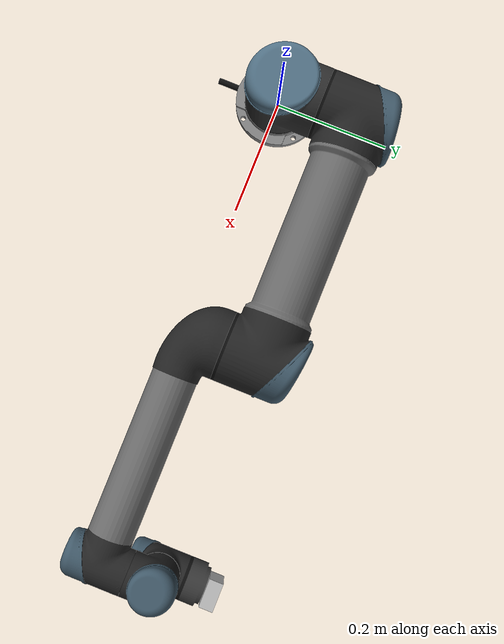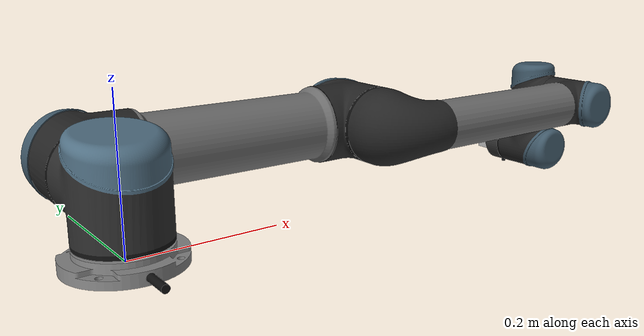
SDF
<?xml version='1.0'?>
<sdf version='1.6'>
  <model name='ur5'>
    <link name='base_link'>
      <pose frame=''>0 0 0 0 -0 0</pose>
      <inertial>
        <pose frame=''>0 0 0 0 -0 0</pose>
        <mass>4</mass>
        <inertia>
          <ixx>0.00443333</ixx>
          <ixy>0</ixy>
          <ixz>0</ixz>
          <iyy>0.00443333</iyy>
          <iyz>0</iyz>
          <izz>0.0072</izz>
        </inertia>
      </inertial>
      <self_collide>0</self_collide>
      <kinematic>0</kinematic>
      <visual name='base_link_visual'>
        <pose frame=''>0 0 0 0 -0 0</pose>
        <geometry>
          <mesh>
            <scale>1 1 1</scale>
            <uri>model://meshes/ur5/visual/base.dae</uri>
          </mesh>
        </geometry>
        <cast_shadows>1</cast_shadows>
        <transparency>0</transparency>
      </visual>
      <collision name='base_link_collision'>
        <laser_retro>0</laser_retro>
        <max_contacts>10</max_contacts>
        <pose frame=''>0 0 0 0 -0 0</pose>
        <geometry>
          <mesh>
            <uri>model://meshes/ur5/collision/base.stl</uri>
          </mesh>
        </geometry>
        <surface>
          <friction>
            <ode>
              <mu>1</mu>
              <mu2>1</mu2>
              <fdir1>0 0 0</fdir1>
              <slip1>0</slip1>
              <slip2>0</slip2>
            </ode>
            <torsional>
              <coefficient>1</coefficient>
              <patch_radius>0</patch_radius>
              <surface_radius>0</surface_radius>
              <use_patch_radius>1</use_patch_radius>
              <ode>
                <slip>0</slip>
              </ode>
            </torsional>
          </friction>
          <bounce>
            <restitution_coefficient>0</restitution_coefficient>
            <threshold>1e+06</threshold>
          </bounce>
          <contact>
            <collide_without_contact>0</collide_without_contact>
            <collide_without_contact_bitmask>1</collide_without_contact_bitmask>
            <collide_bitmask>1</collide_bitmask>
            <ode>
              <soft_cfm>0</soft_cfm>
              <soft_erp>0.2</soft_erp>
              <kp>1e+13</kp>
              <kd>1</kd>
              <max_vel>0.01</max_vel>
              <min_depth>0</min_depth>
            </ode>
            <bullet>
              <split_impulse>1</split_impulse>
              <split_impulse_penetration_threshold>-0.01</split_impulse_penetration_threshold>
              <soft_cfm>0</soft_cfm>
              <soft_erp>0.2</soft_erp>
              <kp>1e+13</kp>
              <kd>1</kd>
            </bullet>
          </contact>
        </surface>
      </collision>
    </link>
    <link name='forearm_link'>
      <pose frame=''>0.425 0.01615 0.089159 3.14159 1.57079 3.14159</pose>
      <inertial>
        <pose frame=''>0 0 0.25 0 -0 0</pose>
        <mass>2.275</mass>
        <inertia>
          <ixx>0.0494433</ixx>
          <ixy>0</ixy>
          <ixz>0</ixz>
          <iyy>0.0494433</iyy>
          <iyz>0</iyz>
          <izz>0.004095</izz>
        </inertia>
      </inertial>
      <self_collide>0</self_collide>
      <kinematic>0</kinematic>
      <visual name='forearm_link_visual'>
        <pose frame=''>0 0 0 0 -0 0</pose>
        <geometry>
          <mesh>
            <scale>1 1 1</scale>
            <uri>model://meshes/ur5/visual/forearm.dae</uri>
          </mesh>
        </geometry>
        <cast_shadows>1</cast_shadows>
        <transparency>0</transparency>
      </visual>
      <collision name='forearm_link_collision'>
        <laser_retro>0</laser_retro>
        <max_contacts>10</max_contacts>
        <pose frame=''>0 0 0 0 -0 0</pose>
        <geometry>
          <mesh>
            <uri>model://meshes/ur5/collision/forearm.stl</uri>
          </mesh>
        </geometry>
        <surface>
          <friction>
            <ode>
              <mu>1</mu>
              <mu2>1</mu2>
              <fdir1>0 0 0</fdir1>
              <slip1>0</slip1>
              <slip2>0</slip2>
            </ode>
            <torsional>
              <coefficient>1</coefficient>
              <patch_radius>0</patch_radius>
              <surface_radius>0</surface_radius>
              <use_patch_radius>1</use_patch_radius>
              <ode>
                <slip>0</slip>
              </ode>
            </torsional>
          </friction>
          <bounce>
            <restitution_coefficient>0</restitution_coefficient>
            <threshold>1e+06</threshold>
          </bounce>
          <contact>
            <collide_without_contact>0</collide_without_contact>
            <collide_without_contact_bitmask>1</collide_without_contact_bitmask>
            <collide_bitmask>1</collide_bitmask>
            <ode>
              <soft_cfm>0</soft_cfm>
              <soft_erp>0.2</soft_erp>
              <kp>1e+13</kp>
              <kd>1</kd>
              <max_vel>0.01</max_vel>
              <min_depth>0</min_depth>
            </ode>
            <bullet>
              <split_impulse>1</split_impulse>
              <split_impulse_penetration_threshold>-0.01</split_impulse_penetration_threshold>
              <soft_cfm>0</soft_cfm>
              <soft_erp>0.2</soft_erp>
              <kp>1e+13</kp>
              <kd>1</kd>
            </bullet>
          </contact>
        </surface>
      </collision>
    </link>
    <link name='shoulder_link'>
      <pose frame=''>-0 0 0.089159 0 -0 0</pose>
      <inertial>
        <pose frame=''>0 0 0 0 -0 0</pose>
        <mass>3.7</mass>
        <inertia>
          <ixx>0.0102675</ixx>
          <ixy>0</ixy>
          <ixz>0</ixz>
          <iyy>0.0102675</iyy>
          <iyz>0</iyz>
          <izz>0.00666</izz>
        </inertia>
      </inertial>
      <self_collide>0</self_collide>
      <kinematic>0</kinematic>
      <visual name='shoulder_link_visual'>
        <pose frame=''>0 0 0 0 -0 0</pose>
        <geometry>
          <mesh>
            <scale>1 1 1</scale>
            <uri>model://meshes/ur5/visual/shoulder.dae</uri>
          </mesh>
        </geometry>
        <cast_shadows>1</cast_shadows>
        <transparency>0</transparency>
      </visual>
      <collision name='shoulder_link_collision'>
        <laser_retro>0</laser_retro>
        <max_contacts>10</max_contacts>
        <pose frame=''>0 0 0 0 -0 0</pose>
        <geometry>
          <mesh>
            <uri>model://meshes/ur5/collision/shoulder.stl</uri>
          </mesh>
        </geometry>
        <surface>
          <friction>
            <ode>
              <mu>1</mu>
              <mu2>1</mu2>
              <fdir1>0 0 0</fdir1>
              <slip1>0</slip1>
              <slip2>0</slip2>
            </ode>
            <torsional>
              <coefficient>1</coefficient>
              <patch_radius>0</patch_radius>
              <surface_radius>0</surface_radius>
              <use_patch_radius>1</use_patch_radius>
              <ode>
                <slip>0</slip>
              </ode>
            </torsional>
          </friction>
          <bounce>
            <restitution_coefficient>0</restitution_coefficient>
            <threshold>1e+06</threshold>
          </bounce>
          <contact>
            <collide_without_contact>0</collide_without_contact>
            <collide_without_contact_bitmask>1</collide_without_contact_bitmask>
            <collide_bitmask>1</collide_bitmask>
            <ode>
              <soft_cfm>0</soft_cfm>
              <soft_erp>0.2</soft_erp>
              <kp>1e+13</kp>
              <kd>1</kd>
              <max_vel>0.01</max_vel>
              <min_depth>0</min_depth>
            </ode>
            <bullet>
              <split_impulse>1</split_impulse>
              <split_impulse_penetration_threshold>-0.01</split_impulse_penetration_threshold>
              <soft_cfm>0</soft_cfm>
              <soft_erp>0.2</soft_erp>
              <kp>1e+13</kp>
              <kd>1</kd>
            </bullet>
          </contact>
        </surface>
      </collision>
    </link>
    <link name='upper_arm_link'>
      <pose frame=''>-0 0.13585 0.089159 3.14159 1.57079 3.14159</pose>
      <inertial>
        <pose frame=''>0 0 0.28 0 -0 0</pose>
        <mass>8.393</mass>
        <inertia>
          <ixx>0.226891</ixx>
          <ixy>0</ixy>
          <ixz>0</ixz>
          <iyy>0.226891</iyy>
          <iyz>0</iyz>
          <izz>0.0151074</izz>
        </inertia>
      </inertial>
      <self_collide>0</self_collide>
      <kinematic>0</kinematic>
      <visual name='upper_arm_link_visual'>
        <pose frame=''>0 0 0 0 -0 0</pose>
        <geometry>
          <mesh>
            <scale>1 1 1</scale>
            <uri>model://meshes/ur5/visual/upperarm.dae</uri>
          </mesh>
        </geometry>
        <cast_shadows>1</cast_shadows>
        <transparency>0</transparency>
      </visual>
      <collision name='upper_arm_link_collision'>
        <laser_retro>0</laser_retro>
        <max_contacts>10</max_contacts>
        <pose frame=''>0 0 0 0 -0 0</pose>
        <geometry>
          <mesh>
            <uri>model://meshes/ur5/collision/upperarm.stl</uri>
          </mesh>
        </geometry>
        <surface>
          <friction>
            <ode>
              <mu>1</mu>
              <mu2>1</mu2>
              <fdir1>0 0 0</fdir1>
              <slip1>0</slip1>
              <slip2>0</slip2>
            </ode>
            <torsional>
              <coefficient>1</coefficient>
              <patch_radius>0</patch_radius>
              <surface_radius>0</surface_radius>
              <use_patch_radius>1</use_patch_radius>
              <ode>
                <slip>0</slip>
              </ode>
            </torsional>
          </friction>
          <bounce>
            <restitution_coefficient>0</restitution_coefficient>
            <threshold>1e+06</threshold>
          </bounce>
          <contact>
            <collide_without_contact>0</collide_without_contact>
            <collide_without_contact_bitmask>1</collide_without_contact_bitmask>
            <collide_bitmask>1</collide_bitmask>
            <ode>
              <soft_cfm>0</soft_cfm>
              <soft_erp>0.2</soft_erp>
              <kp>1e+13</kp>
              <kd>1</kd>
              <max_vel>0.01</max_vel>
              <min_depth>0</min_depth>
            </ode>
            <bullet>
              <split_impulse>1</split_impulse>
              <split_impulse_penetration_threshold>-0.01</split_impulse_penetration_threshold>
              <soft_cfm>0</soft_cfm>
              <soft_erp>0.2</soft_erp>
              <kp>1e+13</kp>
              <kd>1</kd>
            </bullet>
          </contact>
        </surface>
      </collision>
    </link>
    <link name='wrist_1_link'>
      <pose frame=''>0.81725 0.01615 0.089159 3.14159 -0 3.14159</pose>
      <inertial>
        <pose frame=''>0 0 0 0 -0 0</pose>
        <mass>1.219</mass>
        <inertia>
          <ixx>0.111173</ixx>
          <ixy>0</ixy>
          <ixz>0</ixz>
          <iyy>0.111173</iyy>
          <iyz>0</iyz>
          <izz>0.21942</izz>
        </inertia>
      </inertial>
      <self_collide>0</self_collide>
      <kinematic>0</kinematic>
      <visual name='wrist_1_link_visual'>
        <pose frame=''>0 0 0 0 -0 0</pose>
        <geometry>
          <mesh>
            <scale>1 1 1</scale>
            <uri>model://meshes/ur5/visual/wrist1.dae</uri>
          </mesh>
        </geometry>
        <cast_shadows>1</cast_shadows>
        <transparency>0</transparency>
      </visual>
      <collision name='wrist_1_link_collision'>
        <laser_retro>0</laser_retro>
        <max_contacts>10</max_contacts>
        <pose frame=''>0 0 0 0 -0 0</pose>
        <geometry>
          <mesh>
            <uri>model://meshes/ur5/collision/wrist1.stl</uri>
          </mesh>
        </geometry>
        <surface>
          <friction>
            <ode>
              <mu>1</mu>
              <mu2>1</mu2>
              <fdir1>0 0 0</fdir1>
              <slip1>0</slip1>
              <slip2>0</slip2>
            </ode>
            <torsional>
              <coefficient>1</coefficient>
              <patch_radius>0</patch_radius>
              <surface_radius>0</surface_radius>
              <use_patch_radius>1</use_patch_radius>
              <ode>
                <slip>0</slip>
              </ode>
            </torsional>
          </friction>
          <bounce>
            <restitution_coefficient>0</restitution_coefficient>
            <threshold>1e+06</threshold>
          </bounce>
          <contact>
            <collide_without_contact>0</collide_without_contact>
            <collide_without_contact_bitmask>1</collide_without_contact_bitmask>
            <collide_bitmask>1</collide_bitmask>
            <ode>
              <soft_cfm>0</soft_cfm>
              <soft_erp>0.2</soft_erp>
              <kp>1e+13</kp>
              <kd>1</kd>
              <max_vel>0.01</max_vel>
              <min_depth>0</min_depth>
            </ode>
            <bullet>
              <split_impulse>1</split_impulse>
              <split_impulse_penetration_threshold>-0.01</split_impulse_penetration_threshold>
              <soft_cfm>0</soft_cfm>
              <soft_erp>0.2</soft_erp>
              <kp>1e+13</kp>
              <kd>1</kd>
            </bullet>
          </contact>
        </surface>
      </collision>
    </link>
    <link name='wrist_2_link'>
      <pose frame=''>0.81725 0.10915 0.089159 3.14159 -0 3.14159</pose>
      <inertial>
        <pose frame=''>0 0 0 0 -0 0</pose>
        <mass>1.219</mass>
        <inertia>
          <ixx>0.111173</ixx>
          <ixy>0</ixy>
          <ixz>0</ixz>
          <iyy>0.111173</iyy>
          <iyz>0</iyz>
          <izz>0.21942</izz>
        </inertia>
      </inertial>
      <self_collide>0</self_collide>
      <kinematic>0</kinematic>
      <visual name='wrist_2_link_visual'>
        <pose frame=''>0 0 0 0 -0 0</pose>
        <geometry>
          <mesh>
            <scale>1 1 1</scale>
            <uri>model://meshes/ur5/visual/wrist2.dae</uri>
          </mesh>
        </geometry>
        <cast_shadows>1</cast_shadows>
        <transparency>0</transparency>
      </visual>
      <collision name='wrist_2_link_collision'>
        <laser_retro>0</laser_retro>
        <max_contacts>10</max_contacts>
        <pose frame=''>0 0 0 0 -0 0</pose>
        <geometry>
          <mesh>
            <uri>model://meshes/ur5/collision/wrist2.stl</uri>
          </mesh>
        </geometry>
        <surface>
          <friction>
            <ode>
              <mu>1</mu>
              <mu2>1</mu2>
              <fdir1>0 0 0</fdir1>
              <slip1>0</slip1>
              <slip2>0</slip2>
            </ode>
            <torsional>
              <coefficient>1</coefficient>
              <patch_radius>0</patch_radius>
              <surface_radius>0</surface_radius>
              <use_patch_radius>1</use_patch_radius>
              <ode>
                <slip>0</slip>
              </ode>
            </torsional>
          </friction>
          <bounce>
            <restitution_coefficient>0</restitution_coefficient>
            <threshold>1e+06</threshold>
          </bounce>
          <contact>
            <collide_without_contact>0</collide_without_contact>
            <collide_without_contact_bitmask>1</collide_without_contact_bitmask>
            <collide_bitmask>1</collide_bitmask>
            <ode>
              <soft_cfm>0</soft_cfm>
              <soft_erp>0.2</soft_erp>
              <kp>1e+13</kp>
              <kd>1</kd>
              <max_vel>0.01</max_vel>
              <min_depth>0</min_depth>
            </ode>
            <bullet>
              <split_impulse>1</split_impulse>
              <split_impulse_penetration_threshold>-0.01</split_impulse_penetration_threshold>
              <soft_cfm>0</soft_cfm>
              <soft_erp>0.2</soft_erp>
              <kp>1e+13</kp>
              <kd>1</kd>
            </bullet>
          </contact>
        </surface>
      </collision>
    </link>
    <link name='wrist_3_link'>
      <pose frame=''>0.81725 0.10915 -0.005491 3.14159 -0 3.14159</pose>
      <inertial>
        <pose frame=''>0 0 0 0 -0 0</pose>
        <mass>0.1879</mass>
        <inertia>
          <ixx>0.0171365</ixx>
          <ixy>0</ixy>
          <ixz>0</ixz>
          <iyy>0.0171365</iyy>
          <iyz>0</iyz>
          <izz>0.033822</izz>
        </inertia>
      </inertial>
      <self_collide>0</self_collide>
      <kinematic>0</kinematic>
      <visual name='wrist_3_link_visual'>
        <pose frame=''>0 0 0 0 -0 0</pose>
        <geometry>
          <mesh>
            <scale>1 1 1</scale>
            <uri>model://meshes/ur5/visual/wrist3.dae</uri>
          </mesh>
        </geometry>
        <cast_shadows>1</cast_shadows>
        <transparency>0</transparency>
      </visual>
      <collision name='wrist_3_link_collision'>
        <laser_retro>0</laser_retro>
        <max_contacts>10</max_contacts>
        <pose frame=''>0 0 0 0 -0 0</pose>
        <geometry>
          <mesh>
            <uri>model://meshes/ur5/collision/wrist3.stl</uri>
          </mesh>
        </geometry>
        <surface>
          <friction>
            <ode>
              <mu>1</mu>
              <mu2>1</mu2>
              <fdir1>0 0 0</fdir1>
              <slip1>0</slip1>
              <slip2>0</slip2>
            </ode>
            <torsional>
              <coefficient>1</coefficient>
              <patch_radius>0</patch_radius>
              <surface_radius>0</surface_radius>
              <use_patch_radius>1</use_patch_radius>
              <ode>
                <slip>0</slip>
              </ode>
            </torsional>
          </friction>
          <bounce>
            <restitution_coefficient>0</restitution_coefficient>
            <threshold>1e+06</threshold>
          </bounce>
          <contact>
            <collide_without_contact>0</collide_without_contact>
            <collide_without_contact_bitmask>1</collide_without_contact_bitmask>
            <collide_bitmask>1</collide_bitmask>
            <ode>
              <soft_cfm>0</soft_cfm>
              <soft_erp>0.2</soft_erp>
              <kp>1e+13</kp>
              <kd>1</kd>
              <max_vel>0.01</max_vel>
              <min_depth>0</min_depth>
            </ode>
            <bullet>
              <split_impulse>1</split_impulse>
              <split_impulse_penetration_threshold>-0.01</split_impulse_penetration_threshold>
              <soft_cfm>0</soft_cfm>
              <soft_erp>0.2</soft_erp>
              <kp>1e+13</kp>
              <kd>1</kd>
            </bullet>
          </contact>
        </surface>
      </collision>
      <collision name='wrist_3_link_fixed_joint_lump__ee_link_collision_1'>
        <laser_retro>0</laser_retro>
        <max_contacts>10</max_contacts>
        <pose frame=''>0 0.0723 0 0 -0 1.5708</pose>
        <geometry>
          <box>
            <size>0.01 0.01 0.01</size>
          </box>
        </geometry>
        <surface>
          <friction>
            <ode>
              <mu>1</mu>
              <mu2>1</mu2>
              <fdir1>0 0 0</fdir1>
              <slip1>0</slip1>
              <slip2>0</slip2>
            </ode>
            <torsional>
              <coefficient>1</coefficient>
              <patch_radius>0</patch_radius>
              <surface_radius>0</surface_radius>
              <use_patch_radius>1</use_patch_radius>
              <ode>
                <slip>0</slip>
              </ode>
            </torsional>
          </friction>
          <bounce>
            <restitution_coefficient>0</restitution_coefficient>
            <threshold>1e+06</threshold>
          </bounce>
          <contact>
            <collide_without_contact>0</collide_without_contact>
            <collide_without_contact_bitmask>1</collide_without_contact_bitmask>
            <collide_bitmask>1</collide_bitmask>
            <ode>
              <soft_cfm>0</soft_cfm>
              <soft_erp>0.2</soft_erp>
              <kp>1e+13</kp>
              <kd>1</kd>
              <max_vel>0.01</max_vel>
              <min_depth>0</min_depth>
            </ode>
            <bullet>
              <split_impulse>1</split_impulse>
              <split_impulse_penetration_threshold>-0.01</split_impulse_penetration_threshold>
              <soft_cfm>0</soft_cfm>
              <soft_erp>0.2</soft_erp>
              <kp>1e+13</kp>
              <kd>1</kd>
            </bullet>
          </contact>
        </surface>
      </collision>
    </link>
    <joint name='elbow_joint' type='revolute'>
      <parent>upper_arm_link</parent>
      <child>forearm_link</child>
      <pose frame=''>0 0 0 0 -0 0</pose>
      <axis>
        <xyz>0 1 0</xyz>
        <use_parent_model_frame>1</use_parent_model_frame>
        <limit>
          <lower>-6.28319</lower>
          <upper>6.28319</upper>
          <effort>150</effort>
          <velocity>3.15</velocity>
        </limit>
        <dynamics>
          <spring_reference>0</spring_reference>
          <spring_stiffness>0</spring_stiffness>
          <damping>0</damping>
          <friction>0</friction>
        </dynamics>
      </axis>
      <physics>
        <ode>
          <limit>
            <cfm>0</cfm>
            <erp>0.2</erp>
          </limit>
          <suspension>
            <cfm>0</cfm>
            <erp>0.2</erp>
          </suspension>
        </ode>
      </physics>
    </joint>
    <joint name='shoulder_lift_joint' type='revolute'>
      <parent>shoulder_link</parent>
      <child>upper_arm_link</child>
      <pose frame=''>0 0 0 0 -0 0</pose>
      <axis>
        <xyz>0 1 0</xyz>
        <use_parent_model_frame>1</use_parent_model_frame>
        <limit>
          <lower>-6.28319</lower>
          <upper>6.28319</upper>
          <effort>150</effort>
          <velocity>3.15</velocity>
        </limit>
        <dynamics>
          <spring_reference>0</spring_reference>
          <spring_stiffness>0</spring_stiffness>
          <damping>0</damping>
          <friction>0</friction>
        </dynamics>
      </axis>
      <physics>
        <ode>
          <limit>
            <cfm>0</cfm>
            <erp>0.2</erp>
          </limit>
          <suspension>
            <cfm>0</cfm>
            <erp>0.2</erp>
          </suspension>
        </ode>
      </physics>
    </joint>
    <joint name='shoulder_pan_joint' type='revolute'>
      <parent>base_link</parent>
      <child>shoulder_link</child>
      <pose frame=''>0 0 0 0 -0 0</pose>
      <axis>
        <xyz>0 0 1</xyz>
        <use_parent_model_frame>1</use_parent_model_frame>
        <limit>
          <lower>-6.28319</lower>
          <upper>6.28319</upper>
          <effort>150</effort>
          <velocity>3.15</velocity>
        </limit>
        <dynamics>
          <spring_reference>0</spring_reference>
          <spring_stiffness>0</spring_stiffness>
          <damping>0</damping>
          <friction>0</friction>
        </dynamics>
      </axis>
      <physics>
        <ode>
          <limit>
            <cfm>0</cfm>
            <erp>0.2</erp>
          </limit>
          <suspension>
            <cfm>0</cfm>
            <erp>0.2</erp>
          </suspension>
        </ode>
      </physics>
    </joint>
    <joint name='wrist_1_joint' type='revolute'>
      <parent>forearm_link</parent>
      <child>wrist_1_link</child>
      <pose frame=''>0 0 0 0 -0 0</pose>
      <axis>
        <xyz>0 1 0</xyz>
        <use_parent_model_frame>1</use_parent_model_frame>
        <limit>
          <lower>-6.28319</lower>
          <upper>6.28319</upper>
          <effort>28</effort>
          <velocity>3.2</velocity>
        </limit>
        <dynamics>
          <spring_reference>0</spring_reference>
          <spring_stiffness>0</spring_stiffness>
          <damping>0</damping>
          <friction>0</friction>
        </dynamics>
      </axis>
      <physics>
        <ode>
          <limit>
            <cfm>0</cfm>
            <erp>0.2</erp>
          </limit>
          <suspension>
            <cfm>0</cfm>
            <erp>0.2</erp>
          </suspension>
        </ode>
      </physics>
    </joint>
    <joint name='wrist_2_joint' type='revolute'>
      <parent>wrist_1_link</parent>
      <child>wrist_2_link</child>
      <pose frame=''>0 0 0 0 -0 0</pose>
      <axis>
        <xyz>0 0 -1</xyz>
        <use_parent_model_frame>1</use_parent_model_frame>
        <limit>
          <lower>-6.28319</lower>
          <upper>6.28319</upper>
          <effort>28</effort>
          <velocity>3.2</velocity>
        </limit>
        <dynamics>
          <spring_reference>0</spring_reference>
          <spring_stiffness>0</spring_stiffness>
          <damping>0</damping>
          <friction>0</friction>
        </dynamics>
      </axis>
      <physics>
        <ode>
          <limit>
            <cfm>0</cfm>
            <erp>0.2</erp>
          </limit>
          <suspension>
            <cfm>0</cfm>
            <erp>0.2</erp>
          </suspension>
        </ode>
      </physics>
    </joint>
    <joint name='wrist_3_joint' type='revolute'>
      <parent>wrist_2_link</parent>
      <child>wrist_3_link</child>
      <pose frame=''>0 0 0 0 -0 0</pose>
      <axis>
        <xyz>0 1 0</xyz>
        <use_parent_model_frame>1</use_parent_model_frame>
        <limit>
          <lower>-6.28319</lower>
          <upper>6.28319</upper>
          <effort>28</effort>
          <velocity>3.2</velocity>
        </limit>
        <dynamics>
          <spring_reference>0</spring_reference>
          <spring_stiffness>0</spring_stiffness>
          <damping>0</damping>
          <friction>0</friction>
        </dynamics>
      </axis>
      <physics>
        <ode>
          <limit>
            <cfm>0</cfm>
            <erp>0.2</erp>
          </limit>
          <suspension>
            <cfm>0</cfm>
            <erp>0.2</erp>
          </suspension>
        </ode>
      </physics>
    </joint>

    <link name='camera_link'>
      <pose frame=''>0.82 0.205 0 0 0 1.57</pose>
      <inertial>
        <mass>0.1</mass>
        <inertia>
          <ixx>1</ixx>
          <ixy>0</ixy>
          <ixz>0</ixz>
          <iyy>1</iyy>
          <iyz>0</iyz>
          <izz>1</izz>
        </inertia>
      </inertial>
      <self_collide>0</self_collide>
      <kinematic>0</kinematic>
      <sensor name='camera' type='camera'>
        <camera name='__default__'>
          <horizontal_fov>1.047</horizontal_fov>
          <image>
            <width>320</width>
            <height>240</height>
          </image>
          <clip>
            <near>0.1</near>
            <far>100</far>
          </clip>
        </camera>
        <update_rate>30</update_rate>
        <visualize>1</visualize>
        <plugin name="camera_controller" filename="libgazebo_ros_camera.so">
          <alwaysOn>true</alwaysOn>
          <updateRate>0.0</updateRate>
          <cameraName>rrbot/camera1</cameraName>
          <imageTopicName>image_raw</imageTopicName>
          <cameraInfoTopicName>camera_info</cameraInfoTopicName>
          <frameName>camera_link</frameName>
          <hackBaseline>0.07</hackBaseline>
          <distortionK1>0.0</distortionK1>
          <distortionK2>0.0</distortionK2>
          <distortionK3>0.0</distortionK3>
          <distortionT1>0.0</distortionT1>
          <distortionT2>0.0</distortionT2>
        </plugin>
      </sensor>
      <visual name='camera_visual'>
        <geometry>
          <box>
            <size>0.025 0.05 0.05</size>
          </box>
        </geometry>
        <pose frame=''>0 0 0 0 -0 0</pose>
        <cast_shadows>1</cast_shadows>
        <transparency>0</transparency>
      </visual>

    </link>

    <joint name="camera_joint" type="fixed">
      <child>camera_link</child>
      <parent>wrist_3_link</parent>
    </joint>

    <static>0</static>
    <allow_auto_disable>1</allow_auto_disable>
  </model>
</sdf>
